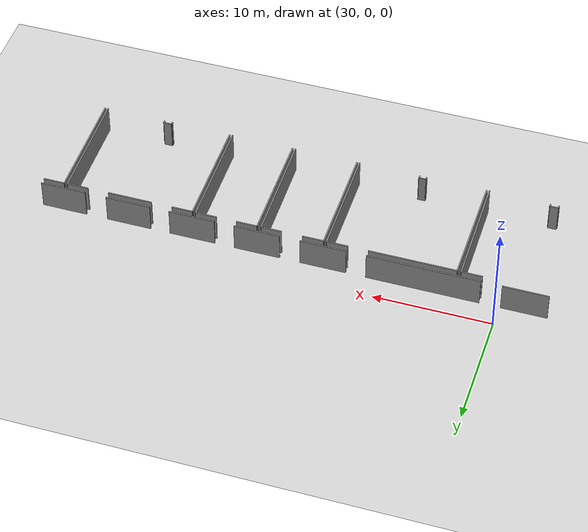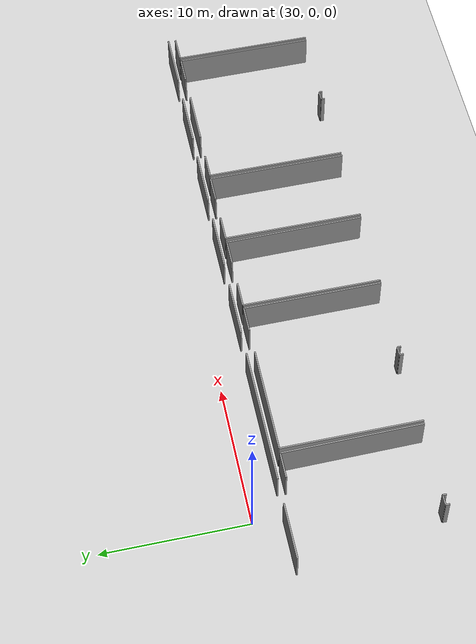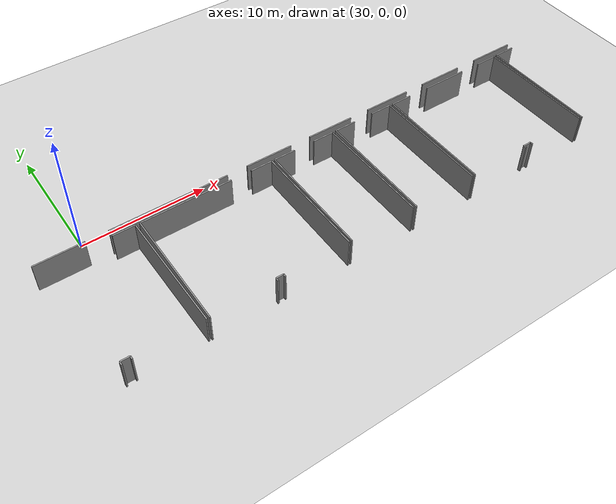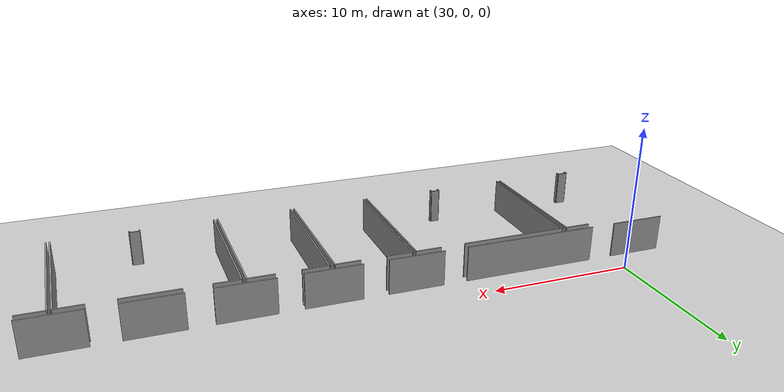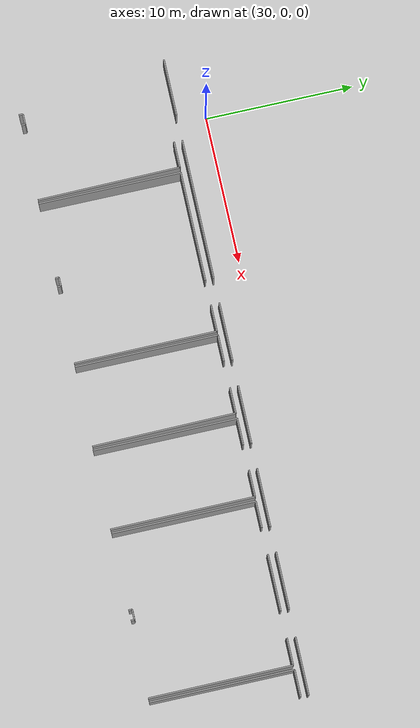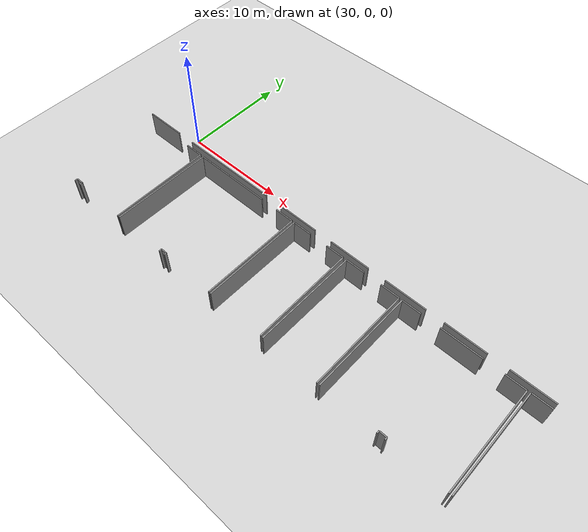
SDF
<sdf version="1.6">
 <world name="default">
  <model name="ground_plane">
   <static>1</static>
   <link name="link">
    <collision name="collision">
     <geometry><plane><normal>0 0 1</normal><size>100 100</size></plane></geometry>
     <surface><friction><ode><mu>100</mu><mu2>50</mu2></ode></friction></surface>
    </collision>
    <visual name="visual">
     <cast_shadows>0</cast_shadows>
     <geometry><plane><normal>0 0 1</normal><size>100 100</size></plane></geometry>
     <material>
      <script><uri>file://media/materials/scripts/gazebo.material</uri><name>Gazebo/Grey</name></script>
     </material>
    </visual>
   </link>
  </model>
  <model name="0510045906_A_40_1_104">
   <static>1</static>
   <link name="Wall_5">
    <collision name="Wall_5_Collision">
     <geometry><box><size>3.86351372798 0.1 2.5</size></box></geometry>
     <pose>1.93175686399 0 1.25 0 0 0</pose>
    </collision>
    <visual name="Wall_5_Visual">
     <pose>1.93175686399 0 1.25 0 0 0</pose>
     <geometry><box><size>3.86351372798 0.1 2.5</size></box></geometry>
     <material>
      <script><uri>file://media/materials/scripts/gazebo.material</uri><name>Gazebo/Grey</name></script>
      <ambient>1 1 1 1</ambient>
     </material>
    </visual>
    <pose>152.813585145 -14.1445484844 0 0 0 3.14159265359</pose>
   </link>
   <link name="Wall_6">
    <collision name="Wall_6_Collision">
     <geometry><box><size>3.82186954452 0.1 2.5</size></box></geometry>
     <pose>1.91093477226 0 1.25 0 0 0</pose>
    </collision>
    <visual name="Wall_6_Visual">
     <pose>1.91093477226 0 1.25 0 0 0</pose>
     <geometry><box><size>3.82186954452 0.1 2.5</size></box></geometry>
     <material>
      <script><uri>file://media/materials/scripts/gazebo.material</uri><name>Gazebo/Grey</name></script>
      <ambient>1 1 1 1</ambient>
     </material>
    </visual>
    <pose>147.115695921 -14.1445484844 0 0 0 3.14159265359</pose>
   </link>
   <link name="Wall_7">
    <collision name="Wall_7_Collision">
     <geometry><box><size>3.92344072369 0.1 2.5</size></box></geometry>
     <pose>1.96172036185 0 1.25 0 0 0</pose>
    </collision>
    <visual name="Wall_7_Visual">
     <pose>1.96172036185 0 1.25 0 0 0</pose>
     <geometry><box><size>3.92344072369 0.1 2.5</size></box></geometry>
     <material>
      <script><uri>file://media/materials/scripts/gazebo.material</uri><name>Gazebo/Grey</name></script>
      <ambient>1 1 1 1</ambient>
     </material>
    </visual>
    <pose>141.623234407 -14.1445484844 0 0 0 3.14159265359</pose>
   </link>
   <link name="Wall_8">
    <collision name="Wall_8_Collision">
     <geometry><box><size>3.90541183939 0.1 2.5</size></box></geometry>
     <pose>1.9527059197 0 1.25 0 0 0</pose>
    </collision>
    <visual name="Wall_8_Visual">
     <pose>1.9527059197 0 1.25 0 0 0</pose>
     <geometry><box><size>3.90541183939 0.1 2.5</size></box></geometry>
     <material>
      <script><uri>file://media/materials/scripts/gazebo.material</uri><name>Gazebo/Grey</name></script>
      <ambient>1 1 1 1</ambient>
     </material>
    </visual>
    <pose>136.024631011 -14.1445484844 0 0 0 3.14159265359</pose>
   </link>
   <link name="Wall_9">
    <collision name="Wall_9_Collision">
     <geometry><box><size>3.90109506428 0.1 2.5</size></box></geometry>
     <pose>1.95054753214 0 1.25 0 0 0</pose>
    </collision>
    <visual name="Wall_9_Visual">
     <pose>1.95054753214 0 1.25 0 0 0</pose>
     <geometry><box><size>3.90109506428 0.1 2.5</size></box></geometry>
     <material>
      <script><uri>file://media/materials/scripts/gazebo.material</uri><name>Gazebo/Grey</name></script>
      <ambient>1 1 1 1</ambient>
     </material>
    </visual>
    <pose>130.392255198 -14.1445484844 0 0 0 3.14159265359</pose>
   </link>
   <link name="Wall_10">
    <collision name="Wall_10_Collision">
     <geometry><box><size>9.49360418981 0.1 2.5</size></box></geometry>
     <pose>4.74680209491 0 1.25 0 0 0</pose>
    </collision>
    <visual name="Wall_10_Visual">
     <pose>4.74680209491 0 1.25 0 0 0</pose>
     <geometry><box><size>9.49360418981 0.1 2.5</size></box></geometry>
     <material>
      <script><uri>file://media/materials/scripts/gazebo.material</uri><name>Gazebo/Grey</name></script>
      <ambient>1 1 1 1</ambient>
     </material>
    </visual>
    <pose>124.816505317 -14.1445484844 0 0 0 3.14159265359</pose>
   </link>
   <link name="Wall_11">
    <collision name="Wall_11_Collision">
     <geometry><box><size>3.85183304237 0.1 2.5</size></box></geometry>
     <pose>1.92591652119 0 1.25 0 0 0</pose>
    </collision>
    <visual name="Wall_11_Visual">
     <pose>1.92591652119 0 1.25 0 0 0</pose>
     <geometry><box><size>3.85183304237 0.1 2.5</size></box></geometry>
     <material>
      <script><uri>file://media/materials/scripts/gazebo.material</uri><name>Gazebo/Grey</name></script>
      <ambient>1 1 1 1</ambient>
     </material>
    </visual>
    <pose>113.57156007 -14.1445484844 0 0 0 3.14159265359</pose>
   </link>
   <link name="Wall_139">
    <collision name="Wall_139_Collision">
     <geometry><box><size>0.250372956674 0.1 2.5</size></box></geometry>
     <pose>0.125186478337 0 1.25 0 0 0</pose>
    </collision>
    <visual name="Wall_139_Visual">
     <pose>0.125186478337 0 1.25 0 0 0</pose>
     <geometry><box><size>0.250372956674 0.1 2.5</size></box></geometry>
     <material>
      <script><uri>file://media/materials/scripts/gazebo.material</uri><name>Gazebo/Grey</name></script>
      <ambient>1 1 1 1</ambient>
     </material>
    </visual>
    <pose>112.001777496 -24.2943024917 0 0 0 1.57079632679</pose>
   </link>
   <link name="Wall_140">
    <collision name="Wall_140_Collision">
     <geometry><box><size>0.706427551182 0.1 2.5</size></box></geometry>
     <pose>0.353213775591 0 1.25 0 0 0</pose>
    </collision>
    <visual name="Wall_140_Visual">
     <pose>0.353213775591 0 1.25 0 0 0</pose>
     <geometry><box><size>0.706427551182 0.1 2.5</size></box></geometry>
     <material>
      <script><uri>file://media/materials/scripts/gazebo.material</uri><name>Gazebo/Grey</name></script>
      <ambient>1 1 1 1</ambient>
     </material>
    </visual>
    <pose>112.001777496 -24.043929535 0 0 0 3.14159265359</pose>
   </link>
   <link name="Wall_141">
    <collision name="Wall_141_Collision">
     <geometry><box><size>0.27678146326 0.1 2.5</size></box></geometry>
     <pose>0.13839073163 0 1.25 0 0 0</pose>
    </collision>
    <visual name="Wall_141_Visual">
     <pose>0.13839073163 0 1.25 0 0 0</pose>
     <geometry><box><size>0.27678146326 0.1 2.5</size></box></geometry>
     <material>
      <script><uri>file://media/materials/scripts/gazebo.material</uri><name>Gazebo/Grey</name></script>
      <ambient>1 1 1 1</ambient>
     </material>
    </visual>
    <pose>111.295349944 -24.043929535 0 0 0 -1.57079632679</pose>
   </link>
   <link name="Wall_145">
    <collision name="Wall_145_Collision">
     <geometry><box><size>1.76606887796 0.1 2.5</size></box></geometry>
     <pose>0.883034438978 0 1.25 0 0 0</pose>
    </collision>
    <visual name="Wall_145_Visual">
     <pose>0.883034438978 0 1.25 0 0 0</pose>
     <geometry><box><size>1.76606887796 0.1 2.5</size></box></geometry>
     <material>
      <script><uri>file://media/materials/scripts/gazebo.material</uri><name>Gazebo/Grey</name></script>
      <ambient>1 1 1 1</ambient>
     </material>
    </visual>
    <pose>115.304618315 -14.6983653388 0 0 0 0.0</pose>
   </link>
   <link name="Wall_146">
    <collision name="Wall_146_Collision">
     <geometry><box><size>9.59657287557 0.1 2.5</size></box></geometry>
     <pose>4.79828643778 0 1.25 0 0 0</pose>
    </collision>
    <visual name="Wall_146_Visual">
     <pose>4.79828643778 0 1.25 0 0 0</pose>
     <geometry><box><size>9.59657287557 0.1 2.5</size></box></geometry>
     <material>
      <script><uri>file://media/materials/scripts/gazebo.material</uri><name>Gazebo/Grey</name></script>
      <ambient>1 1 1 1</ambient>
     </material>
    </visual>
    <pose>117.070687193 -14.6983653388 0 0 0 -1.55928585343</pose>
   </link>
   <link name="Wall_147">
    <collision name="Wall_147_Collision">
     <geometry><box><size>0.23843834312 0.1 2.5</size></box></geometry>
     <pose>0.11921917156 0 1.25 0 0 0</pose>
    </collision>
    <visual name="Wall_147_Visual">
     <pose>0.11921917156 0 1.25 0 0 0</pose>
     <geometry><box><size>0.23843834312 0.1 2.5</size></box></geometry>
     <material>
      <script><uri>file://media/materials/scripts/gazebo.material</uri><name>Gazebo/Grey</name></script>
      <ambient>1 1 1 1</ambient>
     </material>
    </visual>
    <pose>123.132455166 -24.2920171401 0 0 0 1.57079632679</pose>
   </link>
   <link name="Wall_148">
    <collision name="Wall_148_Collision">
     <geometry><box><size>0.591906046659 0.1 2.5</size></box></geometry>
     <pose>0.29595302333 0 1.25 0 0 0</pose>
    </collision>
    <visual name="Wall_148_Visual">
     <pose>0.29595302333 0 1.25 0 0 0</pose>
     <geometry><box><size>0.591906046659 0.1 2.5</size></box></geometry>
     <material>
      <script><uri>file://media/materials/scripts/gazebo.material</uri><name>Gazebo/Grey</name></script>
      <ambient>1 1 1 1</ambient>
     </material>
    </visual>
    <pose>123.132455166 -24.053578797 0 0 0 3.14159265359</pose>
   </link>
   <link name="Wall_149">
    <collision name="Wall_149_Collision">
     <geometry><box><size>0.257736867164 0.1 2.5</size></box></geometry>
     <pose>0.128868433582 0 1.25 0 0 0</pose>
    </collision>
    <visual name="Wall_149_Visual">
     <pose>0.128868433582 0 1.25 0 0 0</pose>
     <geometry><box><size>0.257736867164 0.1 2.5</size></box></geometry>
     <material>
      <script><uri>file://media/materials/scripts/gazebo.material</uri><name>Gazebo/Grey</name></script>
      <ambient>1 1 1 1</ambient>
     </material>
    </visual>
    <pose>122.540549119 -24.053578797 0 0 0 -1.57079632679</pose>
   </link>
   <link name="Wall_150">
    <collision name="Wall_150_Collision">
     <geometry><box><size>9.59847643231 0.1 2.5</size></box></geometry>
     <pose>4.79923821616 0 1.25 0 0 0</pose>
    </collision>
    <visual name="Wall_150_Visual">
     <pose>4.79923821616 0 1.25 0 0 0</pose>
     <geometry><box><size>9.59847643231 0.1 2.5</size></box></geometry>
     <material>
      <script><uri>file://media/materials/scripts/gazebo.material</uri><name>Gazebo/Grey</name></script>
      <ambient>1 1 1 1</ambient>
     </material>
    </visual>
    <pose>117.414505634 -24.3113156642 0 0 0 1.57079632679</pose>
   </link>
   <link name="Wall_151">
    <collision name="Wall_151_Collision">
     <geometry><box><size>7.39641326774 0.1 2.5</size></box></geometry>
     <pose>3.69820663387 0 1.25 0 0 0</pose>
    </collision>
    <visual name="Wall_151_Visual">
     <pose>3.69820663387 0 1.25 0 0 0</pose>
     <geometry><box><size>7.39641326774 0.1 2.5</size></box></geometry>
     <material>
      <script><uri>file://media/materials/scripts/gazebo.material</uri><name>Gazebo/Grey</name></script>
      <ambient>1 1 1 1</ambient>
     </material>
    </visual>
    <pose>117.414505634 -14.7128392319 0 0 0 0.0</pose>
   </link>
   <link name="Wall_152">
    <collision name="Wall_152_Collision">
     <geometry><box><size>1.80415807015 0.1 2.5</size></box></geometry>
     <pose>0.902079035074 0 1.25 0 0 0</pose>
    </collision>
    <visual name="Wall_152_Visual">
     <pose>0.902079035074 0 1.25 0 0 0</pose>
     <geometry><box><size>1.80415807015 0.1 2.5</size></box></geometry>
     <material>
      <script><uri>file://media/materials/scripts/gazebo.material</uri><name>Gazebo/Grey</name></script>
      <ambient>1 1 1 1</ambient>
     </material>
    </visual>
    <pose>126.502332963 -14.7128392319 0 0 0 0.0</pose>
   </link>
   <link name="Wall_153">
    <collision name="Wall_153_Collision">
     <geometry><box><size>9.57925363402 0.1 2.5</size></box></geometry>
     <pose>4.78962681701 0 1.25 0 0 0</pose>
    </collision>
    <visual name="Wall_153_Visual">
     <pose>4.78962681701 0 1.25 0 0 0</pose>
     <geometry><box><size>9.57925363402 0.1 2.5</size></box></geometry>
     <material>
      <script><uri>file://media/materials/scripts/gazebo.material</uri><name>Gazebo/Grey</name></script>
      <ambient>1 1 1 1</ambient>
     </material>
    </visual>
    <pose>128.306491033 -14.7128392319 0 0 0 -1.56682009921</pose>
   </link>
   <link name="Wall_154">
    <collision name="Wall_154_Collision">
     <geometry><box><size>9.59746072052 0.1 2.5</size></box></geometry>
     <pose>4.79873036026 0 1.25 0 0 0</pose>
    </collision>
    <visual name="Wall_154_Visual">
     <pose>4.79873036026 0 1.25 0 0 0</pose>
     <geometry><box><size>9.59746072052 0.1 2.5</size></box></geometry>
     <material>
      <script><uri>file://media/materials/scripts/gazebo.material</uri><name>Gazebo/Grey</name></script>
      <ambient>1 1 1 1</ambient>
     </material>
    </visual>
    <pose>128.559911125 -24.297603555 0 0 0 1.57079632679</pose>
   </link>
   <link name="Wall_155">
    <collision name="Wall_155_Collision">
     <geometry><box><size>1.79450880813 0.1 2.5</size></box></geometry>
     <pose>0.897254404063 0 1.25 0 0 0</pose>
    </collision>
    <visual name="Wall_155_Visual">
     <pose>0.897254404063 0 1.25 0 0 0</pose>
     <geometry><box><size>1.79450880813 0.1 2.5</size></box></geometry>
     <material>
      <script><uri>file://media/materials/scripts/gazebo.material</uri><name>Gazebo/Grey</name></script>
      <ambient>1 1 1 1</ambient>
     </material>
    </visual>
    <pose>128.559911125 -14.7001428345 0 0 0 0.0</pose>
   </link>
   <link name="Wall_156">
    <collision name="Wall_156_Collision">
     <geometry><box><size>1.74219965085 0.1 2.5</size></box></geometry>
     <pose>0.871099825425 0 1.25 0 0 0</pose>
    </collision>
    <visual name="Wall_156_Visual">
     <pose>0.871099825425 0 1.25 0 0 0</pose>
     <geometry><box><size>1.74219965085 0.1 2.5</size></box></geometry>
     <material>
      <script><uri>file://media/materials/scripts/gazebo.material</uri><name>Gazebo/Grey</name></script>
      <ambient>1 1 1 1</ambient>
     </material>
    </visual>
    <pose>132.121758451 -14.7001428345 0 0 0 0.0</pose>
   </link>
   <link name="Wall_157">
    <collision name="Wall_157_Collision">
     <geometry><box><size>9.59796641321 0.1 2.5</size></box></geometry>
     <pose>4.79898320661 0 1.25 0 0 0</pose>
    </collision>
    <visual name="Wall_157_Visual">
     <pose>4.79898320661 0 1.25 0 0 0</pose>
     <geometry><box><size>9.59796641321 0.1 2.5</size></box></geometry>
     <material>
      <script><uri>file://media/materials/scripts/gazebo.material</uri><name>Gazebo/Grey</name></script>
      <ambient>1 1 1 1</ambient>
     </material>
    </visual>
    <pose>133.863958102 -14.7001428345 0 0 0 -1.56053105081</pose>
   </link>
   <link name="Wall_158">
    <collision name="Wall_158_Collision">
     <geometry><box><size>9.63859704809 0.1 2.5</size></box></geometry>
     <pose>4.81929852404 0 1.25 0 0 0</pose>
    </collision>
    <visual name="Wall_158_Visual">
     <pose>4.81929852404 0 1.25 0 0 0</pose>
     <geometry><box><size>9.63859704809 0.1 2.5</size></box></geometry>
     <material>
      <script><uri>file://media/materials/scripts/gazebo.material</uri><name>Gazebo/Grey</name></script>
      <ambient>1 1 1 1</ambient>
     </material>
    </visual>
    <pose>134.213616886 -24.3212188542 0 0 0 1.57079632679</pose>
   </link>
   <link name="Wall_159">
    <collision name="Wall_159_Collision">
     <geometry><box><size>1.78943024917 0.1 2.5</size></box></geometry>
     <pose>0.894715124583 0 1.25 0 0 0</pose>
    </collision>
    <visual name="Wall_159_Visual">
     <pose>0.894715124583 0 1.25 0 0 0</pose>
     <geometry><box><size>1.78943024917 0.1 2.5</size></box></geometry>
     <material>
      <script><uri>file://media/materials/scripts/gazebo.material</uri><name>Gazebo/Grey</name></script>
      <ambient>1 1 1 1</ambient>
     </material>
    </visual>
    <pose>134.213616886 -14.6826218061 0 0 0 0.0</pose>
   </link>
   <link name="Wall_160">
    <collision name="Wall_160_Collision">
     <geometry><box><size>1.80034915093 0.1 2.5</size></box></geometry>
     <pose>0.900174575464 0 1.25 0 0 0</pose>
    </collision>
    <visual name="Wall_160_Visual">
     <pose>0.900174575464 0 1.25 0 0 0</pose>
     <geometry><box><size>1.80034915093 0.1 2.5</size></box></geometry>
     <material>
      <script><uri>file://media/materials/scripts/gazebo.material</uri><name>Gazebo/Grey</name></script>
      <ambient>1 1 1 1</ambient>
     </material>
    </visual>
    <pose>137.693699413 -14.6826218061 0 0 0 0.0</pose>
   </link>
   <link name="Wall_161">
    <collision name="Wall_161_Collision">
     <geometry><box><size>9.63865357596 0.1 2.5</size></box></geometry>
     <pose>4.81932678798 0 1.25 0 0 0</pose>
    </collision>
    <visual name="Wall_161_Visual">
     <pose>4.81932678798 0 1.25 0 0 0</pose>
     <geometry><box><size>9.63865357596 0.1 2.5</size></box></geometry>
     <material>
      <script><uri>file://media/materials/scripts/gazebo.material</uri><name>Gazebo/Grey</name></script>
      <ambient>1 1 1 1</ambient>
     </material>
    </visual>
    <pose>139.494048564 -14.6826218061 0 0 0 -1.56737150221</pose>
   </link>
   <link name="Wall_162">
    <collision name="Wall_162_Collision">
     <geometry><box><size>0.230566576734 0.1 2.5</size></box></geometry>
     <pose>0.115283288367 0 1.25 0 0 0</pose>
    </collision>
    <visual name="Wall_162_Visual">
     <pose>0.115283288367 0 1.25 0 0 0</pose>
     <geometry><box><size>0.230566576734 0.1 2.5</size></box></geometry>
     <material>
      <script><uri>file://media/materials/scripts/gazebo.material</uri><name>Gazebo/Grey</name></script>
      <ambient>1 1 1 1</ambient>
     </material>
    </visual>
    <pose>145.597714648 -24.2993810506 0 0 0 1.57079632679</pose>
   </link>
   <link name="Wall_163">
    <collision name="Wall_163_Collision">
     <geometry><box><size>0.680526900492 0.1 2.5</size></box></geometry>
     <pose>0.340263450246 0 1.25 0 0 0</pose>
    </collision>
    <visual name="Wall_163_Visual">
     <pose>0.340263450246 0 1.25 0 0 0</pose>
     <geometry><box><size>0.680526900492 0.1 2.5</size></box></geometry>
     <material>
      <script><uri>file://media/materials/scripts/gazebo.material</uri><name>Gazebo/Grey</name></script>
      <ambient>1 1 1 1</ambient>
     </material>
    </visual>
    <pose>145.597714648 -24.0688144739 0 0 0 3.14159265359</pose>
   </link>
   <link name="Wall_164">
    <collision name="Wall_164_Collision">
     <geometry><box><size>0.241485478495 0.1 2.5</size></box></geometry>
     <pose>0.120742739248 0 1.25 0 0 0</pose>
    </collision>
    <visual name="Wall_164_Visual">
     <pose>0.120742739248 0 1.25 0 0 0</pose>
     <geometry><box><size>0.241485478495 0.1 2.5</size></box></geometry>
     <material>
      <script><uri>file://media/materials/scripts/gazebo.material</uri><name>Gazebo/Grey</name></script>
      <ambient>1 1 1 1</ambient>
     </material>
    </visual>
    <pose>144.917187748 -24.0688144739 0 0 0 -1.57079632679</pose>
   </link>
   <link name="Wall_165">
    <collision name="Wall_165_Collision">
     <geometry><box><size>9.61015711792 0.1 2.5</size></box></geometry>
     <pose>4.80507855896 0 1.25 0 0 0</pose>
    </collision>
    <visual name="Wall_165_Visual">
     <pose>4.80507855896 0 1.25 0 0 0</pose>
     <geometry><box><size>9.61015711792 0.1 2.5</size></box></geometry>
     <material>
      <script><uri>file://media/materials/scripts/gazebo.material</uri><name>Gazebo/Grey</name></script>
      <ambient>1 1 1 1</ambient>
     </material>
    </visual>
    <pose>139.779463577 -24.3102999524 0 0 0 1.57079632679</pose>
   </link>
   <link name="Wall_166">
    <collision name="Wall_166_Collision">
     <geometry><box><size>1.77292493255 0.1 2.5</size></box></geometry>
     <pose>0.886462466275 0 1.25 0 0 0</pose>
    </collision>
    <visual name="Wall_166_Visual">
     <pose>0.886462466275 0 1.25 0 0 0</pose>
     <geometry><box><size>1.77292493255 0.1 2.5</size></box></geometry>
     <material>
      <script><uri>file://media/materials/scripts/gazebo.material</uri><name>Gazebo/Grey</name></script>
      <ambient>1 1 1 1</ambient>
     </material>
    </visual>
    <pose>139.779463577 -14.7001428345 0 0 0 0.0</pose>
   </link>
   <link name="Wall_167">
    <collision name="Wall_167_Collision">
     <geometry><box><size>3.77489287415 0.1 2.5</size></box></geometry>
     <pose>1.88744643707 0 1.25 0 0 0</pose>
    </collision>
    <visual name="Wall_167_Visual">
     <pose>1.88744643707 0 1.25 0 0 0</pose>
     <geometry><box><size>3.77489287415 0.1 2.5</size></box></geometry>
     <material>
      <script><uri>file://media/materials/scripts/gazebo.material</uri><name>Gazebo/Grey</name></script>
      <ambient>1 1 1 1</ambient>
     </material>
    </visual>
    <pose>143.332423425 -14.7001428345 0 0 0 0.0</pose>
   </link>
   <link name="Wall_168">
    <collision name="Wall_168_Collision">
     <geometry><box><size>1.81787017934 0.1 2.5</size></box></geometry>
     <pose>0.908935089668 0 1.25 0 0 0</pose>
    </collision>
    <visual name="Wall_168_Visual">
     <pose>0.908935089668 0 1.25 0 0 0</pose>
     <geometry><box><size>1.81787017934 0.1 2.5</size></box></geometry>
     <material>
      <script><uri>file://media/materials/scripts/gazebo.material</uri><name>Gazebo/Grey</name></script>
      <ambient>1 1 1 1</ambient>
     </material>
    </visual>
    <pose>148.900047611 -14.7001428345 0 0 0 0.0</pose>
   </link>
   <link name="Wall_169">
    <collision name="Wall_169_Collision">
     <geometry><box><size>9.59928110162 0.1 2.5</size></box></geometry>
     <pose>4.79964055081 0 1.25 0 0 0</pose>
    </collision>
    <visual name="Wall_169_Visual">
     <pose>4.79964055081 0 1.25 0 0 0</pose>
     <geometry><box><size>9.59928110162 0.1 2.5</size></box></geometry>
     <material>
      <script><uri>file://media/materials/scripts/gazebo.material</uri><name>Gazebo/Grey</name></script>
      <ambient>1 1 1 1</ambient>
     </material>
    </visual>
    <pose>150.717917791 -14.7001428345 0 0 0 -1.56780715494</pose>
   </link>
   <link name="Wall_170">
    <collision name="Wall_170_Collision">
     <geometry><box><size>9.62006030789 0.1 2.5</size></box></geometry>
     <pose>4.81003015394 0 1.25 0 0 0</pose>
    </collision>
    <visual name="Wall_170_Visual">
     <pose>4.81003015394 0 1.25 0 0 0</pose>
     <geometry><box><size>9.62006030789 0.1 2.5</size></box></geometry>
     <material>
      <script><uri>file://media/materials/scripts/gazebo.material</uri><name>Gazebo/Grey</name></script>
      <ambient>1 1 1 1</ambient>
     </material>
    </visual>
    <pose>150.999016029 -24.2948103476 0 0 0 1.57079632679</pose>
   </link>
   <link name="Wall_171">
    <collision name="Wall_171_Collision">
     <geometry><box><size>1.78943024917 0.1 2.5</size></box></geometry>
     <pose>0.894715124583 0 1.25 0 0 0</pose>
    </collision>
    <visual name="Wall_171_Visual">
     <pose>0.894715124583 0 1.25 0 0 0</pose>
     <geometry><box><size>1.78943024917 0.1 2.5</size></box></geometry>
     <material>
      <script><uri>file://media/materials/scripts/gazebo.material</uri><name>Gazebo/Grey</name></script>
      <ambient>1 1 1 1</ambient>
     </material>
    </visual>
    <pose>150.999016029 -14.6747500397 0 0 0 0.0</pose>
   </link>
   <pose>-83.7 12.1648944612 0 0 0 0</pose>
  </model>
 </world>
</sdf>
